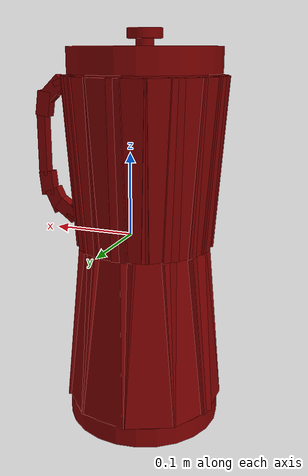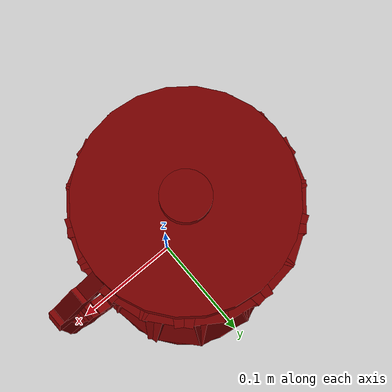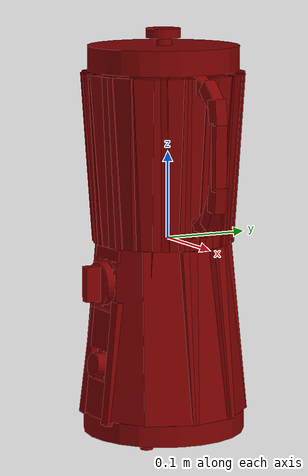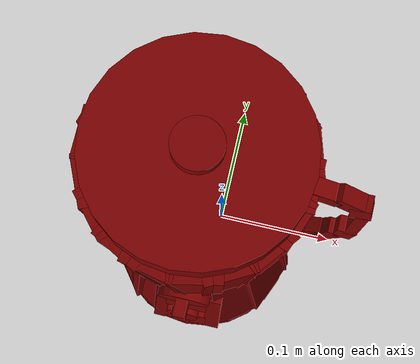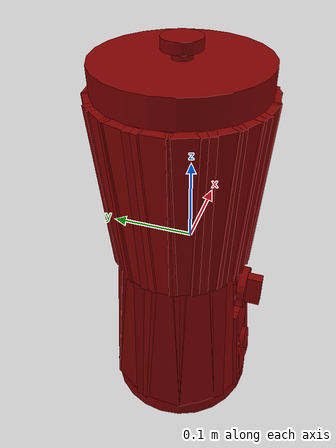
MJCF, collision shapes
<?xml version='1.0' encoding='UTF-8'?>
<mujoco model="model">
  <option timestep="0.002" gravity="0.0 0.0 -9.81"/>
  <compiler angle="radian"/>
  <asset>
    <mesh file="visuals/Blade001.obj" name="Blade001_vis"/>
    <mesh file="visuals/Body001.obj" name="Body001_vis"/>
    <mesh file="visuals/Button001.obj" name="Button001_vis"/>
    <mesh file="visuals/Jug001.obj" name="Jug001_vis"/>
    <mesh file="visuals/Jug001_Clear.obj" name="Jug001_Clear_vis"/>
    <mesh file="visuals/Knob001.obj" name="Knob001_vis"/>
    <mesh file="visuals/Lid001.obj" name="Lid001_vis"/>
    <texture file="visuals/T_BC001.png" name="Body001_material" type="2d"/>
    <material name="Body001_material" rgba="1 1 1 1.0" texture="Body001_material" shininess="0.2472135901451111" specular="1"/>
    <texture file="visuals/T_BC001.png" name="Button001_material" type="2d"/>
    <material name="Button001_material" rgba="1 1 1 1.0" texture="Button001_material" shininess="0.4472135901451111" specular="0.3103448502657381"/>
    <material name="Jug001_Clear_material" rgba="0.03639296442270279 0.03639296442270279 0.03639296442270279 0.75" shininess="0.4472135901451111" specular="0.3103448502657381"/>
    <texture file="visuals/T_BC001.png" name="Blade001_material" type="2d"/>
    <material name="Blade001_material" rgba="1 1 1 1.0" texture="Blade001_material" shininess="0.4472135901451111" specular="1"/>
    <texture file="visuals/T_BC001.png" name="Jug001_material" type="2d"/>
    <material name="Jug001_material" rgba="1 1 1 1.0" texture="Jug001_material" shininess="0.4472135901451111" specular="0.3103448502657381"/>
    <texture file="visuals/T_BC001.png" name="Lid001_material" type="2d"/>
    <material name="Lid001_material" rgba="1 1 1 1.0" texture="Lid001_material" shininess="0.4472135901451111" specular="0.3103448502657381"/>
    <texture file="visuals/T_BC001.png" name="Knob001_material" type="2d"/>
    <material name="Knob001_material" rgba="1 1 1 1.0" texture="Knob001_material" shininess="0.4472135901451111" specular="0.3103448502657381"/>
  </asset>
  <default>
    <default class="visual">
      <geom conaffinity="0" contype="0" group="1" type="mesh"/>
    </default>
    <default class="collision">
      <geom group="0" rgba="0.5 0 0 0.5"/>
    </default>
    <default class="spawn">
      <geom group="0" rgba="1 1 1 0.5" contype="0" conaffinity="0"/>
      <site group="0" rgba="1 1 1 0.5"/>
    </default>
    <default class="region">
      <geom group="1" conaffinity="0" contype="0" rgba="0 1 0 0"/>
    </default>
  </default>
  <worldbody>
    <body>
      <body name="object">
        <geom mesh="Body001_vis" type="mesh" solimp="0.998 0.998 0.001" solref="0.001 1" friction="0.95 0.3 0.1" class="visual" material="Body001_material"/>
        <geom class="collision" type="box" pos="-0.04508056 -0.07804891 -0.14529020" size="0.006290201563388109 0.004342055879533291 0.06407251954078674" quat="0.998228132724762 -0.04964236915111542 0.032765187323093414 0.0016294337110593915"/>
        <geom class="collision" type="box" pos="0.05375285 -0.02451593 -0.10722586" size="0.031314998865127563 0.0043420568108558655 0.09979217499494553" quat="0.8261741399765015 -0.04108605533838272 -0.02790989726781845 0.5612212419509888"/>
        <geom class="collision" type="box" pos="0.03857027 0.05775440 -0.10722586" size="0.03131500259041786 0.004342056345194578 0.09979217499494553" quat="0.40196719765663147 -0.01999003440141678 -0.04546890780329704 0.9143059253692627"/>
        <geom class="collision" type="box" pos="-0.05170204 0.07637054 -0.10722586" size="0.03131500259041786 0.0043420568108558655 0.09979217499494553" quat="0.20901905000209808 -0.010394622571766376 0.04856926202774048 -0.9766494035720825"/>
        <geom class="collision" type="box" pos="-0.09815431 0.00790504 -0.10722586" size="0.03131500259041786 0.0043420568108558655 0.09979218244552612" quat="0.6908359527587891 -0.034355610609054565 0.03587077558040619 -0.7213034629821777"/>
        <geom class="collision" type="box" pos="-0.08430692 -0.04020268 -0.10722586" size="0.03131500259041786 0.004342056345194578 0.09979218244552612" quat="0.8842520713806152 -0.043974295258522034 0.023092910647392273 -0.46436113119125366"/>
        <geom class="collision" type="box" pos="-0.06333639 -0.06090439 -0.10722586" size="0.017695583403110504 0.004342057276517153 0.09979221969842911" quat="0.9555090069770813 -0.0475178100168705 0.014459053985774517 -0.2907498776912689"/>
        <geom class="collision" type="box" pos="-0.08767474 0.04389017 -0.10722586" size="0.03131500259041786 0.0043420568108558655 0.09979217499494553" quat="0.4993739724159241 -0.024834129959344864 0.043014995753765106 -0.8649616241455078"/>
        <geom class="collision" type="box" pos="-0.00359403 0.08165376 -0.10722586" size="0.03131500259041786 0.0043420568108558655 0.09979217499494553" quat="0.1011553704738617 -0.005030522122979164 -0.04941396042704582 0.9936299920082092"/>
        <geom class="collision" type="box" pos="0.05773467 0.02011078 -0.10722586" size="0.031314998865127563 0.0043420568108558655 0.09979217499494553" quat="0.6324239373207092 -0.03145076334476471 -0.03844309598207474 0.7730284333229065"/>
        <geom class="collision" type="box" pos="0.02664947 -0.05934147 -0.10722586" size="0.022470667958259583 0.004342057276517153 0.09979216754436493" quat="0.9503158926963806 -0.047259774059057236 -0.015282219275832176 0.30729907751083374"/>
        <geom class="collision" type="cylinder" pos="-0.06773908 -0.04274936 -0.23530789" size="0.007523544132709503 0.004609951749444008" quat="1.0 0.0 0.0 0.0"/>
        <geom class="collision" type="cylinder" pos="-0.01946600 0.00450799 -0.21846642" size="0.09451781958341599 0.012371077202260494" quat="1.0 0.0 0.0 0.0"/>
        <geom class="collision" type="cylinder" pos="0.02882603 -0.04274936 -0.23530789" size="0.007523566018790007 0.004609973169863224" quat="1.0 0.0 0.0 0.0"/>
        <geom class="collision" type="cylinder" pos="-0.06773908 0.05196100 -0.23530789" size="0.007523576728999615 0.004609983880072832" quat="1.0 0.0 0.0 0.0"/>
        <geom class="collision" type="cylinder" pos="0.02882603 0.05196100 -0.23530789" size="0.007523587439209223 0.00460999459028244" quat="1.0 0.0 0.0 0.0"/>
        <geom class="collision" type="cylinder" pos="-0.01946600 0.00450799 -0.03621591" size="0.0683380588889122 0.0018439501291140914" quat="1.0 0.0 0.0 0.0"/>
        <geom class="collision" type="box" pos="0.00940554 -0.07701370 -0.13997952" size="0.007842416875064373 0.004342055879533291 0.07178051769733429" quat="0.9987657070159912 -0.04966913163661957 1.1028762711222566e-17 -3.0471712783511055e-24"/>
        <geom class="collision" type="box" pos="-0.01838777 -0.07404845 -0.10516823" size="0.020939840003848076 0.004342056345194578 0.02302616462111473" quat="0.9987657070159912 -0.04966913163661957 1.1028762711222566e-17 -3.0471712783511055e-24"/>
        <geom class="collision" type="box" pos="-0.01838777 -0.08197502 -0.18445455" size="0.020939840003848076 0.004321036394685507 0.021655265241861343" quat="0.9987657070159912 -0.04966913163661957 1.1028762711222566e-17 -3.0471712783511055e-24"/>
        <geom class="collision" type="box" pos="-0.01838777 -0.06517216 -0.01614511" size="0.02766570821404457 0.004342055879533291 0.007168604526668787" quat="0.9987657070159912 -0.04966913163661957 1.1028762711222566e-17 -3.0471712783511055e-24"/>
        <geom class="collision" type="cylinder" pos="-0.01946600 0.00436904 -0.11241136" size="0.0711572915315628 0.07241784036159515" quat="1.0 0.0 0.0 0.0"/>
        <body name="Button001">
          <joint axis="0.0 1.0 0.0" pos="-0.01946600 -0.08153000 -0.14642300" limited="true" name="Button001_joint" range="0.0 0.0025" type="slide" damping="1" frictionloss="1" armature=".01" stiffness="0.05"/>
          <geom mesh="Button001_vis" type="mesh" solimp="0.998 0.998 0.001" solref="0.001 1" friction="0.95 0.3 0.1" class="visual" material="Button001_material"/>
          <geom class="collision" type="cylinder" pos="-0.01946600 -0.08152478 -0.14642375" size="0.014364420436322689 0.006613458041101694" quat="0.7555490732192993 0.6550920605659485 1.1152972152003528e-17 -1.115296967046169e-17"/>
        </body>
        <body name="Jug001_Clear">
          <geom class="region" name="reg_int" type="box" pos="-0.01947919 0.004369000000000001 0.09852810000000001" size="0.049349090000000005 0.04934909 0.0732157"/>
          <joint axis="0.0 0.0 1.0" pos="0.00000000 0.00450800 0.08019402" limited="true" name="Jug001_Clear_joint" range="0.0 0.1" type="slide" damping="1" frictionloss="1" armature=".01" stiffness="0.05"/>
          <geom mesh="Jug001_Clear_vis" type="mesh" solimp="0.998 0.998 0.001" solref="0.001 1" friction="0.95 0.3 0.1" class="visual" material="Jug001_Clear_material"/>
          <geom class="collision" type="box" pos="0.06165763 0.00451493 0.09213771" size="0.004797820001840591 0.021256864070892334 0.09871997684240341" quat="0.9994385838508606 -1.3750918154183524e-15 0.03350444138050079 4.501618189323153e-09"/>
          <geom class="collision" type="box" pos="0.04225437 0.05740355 0.09213771" size="0.004797819536179304 0.02125686965882778 0.09871996939182281" quat="0.9382874965667725 -0.0115397023037076 0.031454458832740784 0.3442296087741852"/>
          <geom class="collision" type="box" pos="-0.00827662 0.08543458 0.09213771" size="0.004797815345227718 0.021256867796182632 0.09871996939182281" quat="0.7561712265014648 -0.021907974034547806 0.0253493282943964 0.6535155177116394"/>
          <geom class="collision" type="box" pos="-0.06449462 0.07321498 0.09213771" size="0.004797819536179304 0.021256865933537483 0.09871996194124222" quat="0.47799187898635864 -0.02942420355975628 0.016023846343159676 0.8777250051498413"/>
          <geom class="collision" type="box" pos="-0.09809421 0.02919597 0.09213770" size="0.004797817207872868 0.021256865933537483 0.09871996194124222" quat="0.15259899199008942 -0.033111363649368286 0.005115586332976818 0.9877201318740845"/>
          <geom class="collision" type="box" pos="-0.09525025 -0.02780454 0.09213771" size="0.004797815345227718 0.021256865933537483 0.09871996939182281" quat="0.20162884891033173 0.032815542072057724 0.006759255193173885 -0.9788888096809387"/>
          <geom class="collision" type="box" pos="-0.05970805 -0.06705004 0.09213771" size="0.004797820001840591 0.021256867796182632 0.09871996194124222" quat="0.5076490640640259 0.028860589489340782 0.01701805181801319 -0.8609122633934021"/>
          <geom class="collision" type="box" pos="-0.00349718 -0.07555939 0.09213771" size="0.004797819536179304 0.021256867796182632 0.09871997684240341" quat="0.7752306461334229 0.021146109327673912 0.02598826214671135 -0.6307891011238098"/>
          <geom class="collision" type="box" pos="0.04447075 -0.04564265 0.09213771" size="0.004797819536179304 0.021256867796182632 0.0987199917435646" quat="0.9454727172851562 0.010860658250749111 0.03169533982872963 -0.32397347688674927"/>
          <geom class="collision" type="box" pos="0.05809576 0.02838769 0.09213771" size="0.004797820001840591 0.021256865933537483 0.09871996194124222" quat="0.9884965419769287 -0.004944205284118652 0.03313766047358513 0.14748571813106537"/>
          <geom class="collision" type="box" pos="0.05629871 -0.02460230 0.09213771" size="0.004797819536179304 0.021256867796182632 0.09871997684240341" quat="0.9829298257827759 0.006064509507268667 0.03295101597905159 -0.18090449273586273"/>
          <geom class="collision" type="box" pos="0.01915279 -0.06721817 0.09213771" size="0.004797819536179304 0.02125686965882778 0.09871996194124222" quat="0.8598279356956482 0.017079556360840797 0.028824234381318092 -0.5094834566116333"/>
          <geom class="collision" type="box" pos="-0.03709385 -0.07548775 0.09213771" size="0.004797819536179304 0.021256867796182632 0.09871996939182281" quat="0.6291347146034241 0.02603328973054886 0.02109065093100071 -0.7765738368034363"/>
          <geom class="collision" type="box" pos="-0.08254409 -0.04832650 0.09213771" size="0.004797820001840591 0.021256867796182632 0.09871996939182281" quat="0.34387457370758057 0.031458817422389984 0.011527794413268566 -0.9384176731109619"/>
          <geom class="collision" type="box" pos="-0.10190295 0.00536135 0.09213771" size="0.0047978186048567295 0.021256865933537483 0.09871996939182281" quat="0.0051720221526920795 -0.03350399434566498 0.00017338321777060628 0.9994251728057861"/>
          <geom class="collision" type="box" pos="-0.08261613 0.05727113 0.09213771" size="0.004797820001840591 0.021256865933537483 0.09871997684240341" quat="0.3432343602180481 -0.03146668151021004 0.011506336741149426 0.9386520385742188"/>
          <geom class="collision" type="box" pos="-0.03241356 0.08536888 0.09213771" size="0.004797820001840591 0.021256865933537483 0.09871996194124222" quat="0.6514542698860168 -0.025408880785107613 0.021838875487446785 0.7579477429389954"/>
          <geom class="collision" type="box" pos="0.02409909 0.07330893 0.09213771" size="0.004797819536179304 0.02125686965882778 0.09871996939182281" quat="0.8772175908088684 -0.016055047512054443 0.02940719574689865 0.4789225459098816"/>
          <geom class="collision" type="box" pos="0.03652608 -0.01725264 -0.00408595" size="0.014097915031015873 0.013783157803118229 0.0020905467681586742" quat="0.983661949634552 1.4869330766664746e-10 -2.7213188300012625e-11 -0.18002544343471527"/>
          <geom class="collision" type="box" pos="0.01296338 -0.04647587 -0.00408595" size="0.014097914099693298 0.013783156871795654 0.0020905453711748123" quat="0.8787503838539124 1.3283457667156995e-10 -7.214734365490472e-11 -0.4772816002368927"/>
          <geom class="collision" type="box" pos="-0.02703209 -0.05576663 -0.00408595" size="0.014097915031015873 0.013783157803118229 0.002090544207021594" quat="0.6637383699417114 1.0033272823672945e-10 -1.1306464098304048e-10 -0.7479647994041443"/>
          <geom class="collision" type="box" pos="-0.06448396 -0.03645187 -0.00408595" size="0.014097915031015873 0.013783157803118229 0.0020905467681586742" quat="0.3605376183986664 5.449997050877009e-11 -1.4099650613719206e-10 -0.9327446818351746"/>
          <geom class="collision" type="box" pos="-0.07998958 -0.00042312 -0.00408595" size="0.014097915962338448 0.013783158734440804 0.0020905453711748123" quat="0.0375555194914341 5.6770903082703494e-12 -1.510581937314015e-10 -0.9992945194244385"/>
          <geom class="collision" type="box" pos="-0.06987263 0.03778844 -0.00408595" size="0.014097915031015873 0.013783157803118229 0.0020905467681586742" quat="0.29206669330596924 4.414969084765019e-11 1.445720348991486e-10 0.9563979506492615"/>
          <geom class="collision" type="box" pos="-0.03933844 0.06116776 -0.00408595" size="0.014097915962338448 0.013783158734440804 0.0020905453711748123" quat="0.5818083882331848 8.794792671906748e-11 1.229448071127237e-10 0.8133258819580078"/>
          <geom class="collision" type="box" pos="-0.00013555 0.06108140 -0.00408595" size="0.014097915962338448 0.013783158734440804 0.0020905467681586742" quat="0.8146055936813354 1.2313829123034026e-10 8.767690740096867e-11 0.5800153017044067"/>
          <geom class="collision" type="box" pos="0.03082697 0.03675691 -0.00408595" size="0.014097915031015873 0.013783157803118229 0.002090544207021594" quat="0.959339439868927 1.450167208538744e-10 4.266653350071259e-11 0.2822549343109131"/>
          <geom class="collision" type="box" pos="0.04022907 0.00907495 -0.00408595" size="0.014097917824983597 0.013783160597085953 0.0020905467681586742" quat="0.9991481900215149 1.5103426842522083e-10 6.238013577908319e-12 0.0412667915225029"/>
          <geom class="collision" type="box" pos="0.03457299 0.03003524 -0.00408595" size="0.014097915031015873 0.013783157803118229 0.00209054839797318" quat="0.9753949642181396 1.47443668385705e-10 3.3326119641685636e-11 0.22046473622322083"/>
          <geom class="collision" type="box" pos="0.01597625 0.05259297 -0.00408595" size="0.014097917824983597 0.013783160597085953 0.0020905453711748123" quat="0.8928526639938354 1.349663159011527e-10 6.807611419024084e-11 0.4503489136695862"/>
          <geom class="collision" type="box" pos="-0.02159430 0.06437484 -0.00408595" size="0.01418222114443779 0.01448780857026577 0.002090529538691044" quat="1.0 0.0 0.0 0.0"/>
          <geom class="collision" type="box" pos="-0.05828671 0.05057117 -0.00408595" size="0.014097915031015873 0.013783157803118229 0.0020905467681586742" quat="0.42588338255882263 6.437782251733637e-11 1.3676898502623658e-10 0.9047780632972717"/>
          <geom class="collision" type="box" pos="-0.07856151 0.01789301 -0.00408595" size="0.014097915031015873 0.013783157803118229 0.0020905467681586742" quat="0.1151188462972641 1.74017154852546e-11 1.5015806653639885e-10 0.9933516979217529"/>
          <geom class="collision" type="box" pos="-0.07448936 -0.02142483 -0.00408595" size="0.014097915962338448 0.013783158734440804 0.0020905467681586742" quat="0.21684034168720245 3.2778245395714833e-11 -1.4756643129665292e-10 -0.9762070775032043"/>
          <geom class="collision" type="box" pos="-0.04722853 -0.04962666 -0.00408595" size="0.014097915031015873 0.013783157803118229 0.0020905453711748123" quat="0.5225650072097778 7.899250004106406e-11 -1.2888151657008962e-10 -0.8525994420051575"/>
          <geom class="collision" type="box" pos="-0.00536357 -0.05442521 -0.00408595" size="0.014097917824983597 0.013783160597085953 0.002090544207021594" quat="0.7875469326972961 1.1904797980744064e-10 -9.31549282157107e-11 -0.6162546873092651"/>
          <geom class="collision" type="box" pos="0.02874897 -0.03157153 -0.00408595" size="0.014097915031015873 0.013783157803118229 0.0020905467681586742" quat="0.9503161907196045 1.436526592124565e-10 -4.7054967561299677e-11 -0.31128624081611633"/>
          <geom class="collision" type="box" pos="0.04043443 0.00410266 -0.00507593" size="0.014097651466727257 0.013782894238829613 0.002090513939037919" quat="1.0 0.0 0.0 0.0"/>
          <geom class="collision" type="box" pos="0.11265081 0.00453653 0.10631804" size="0.005383961834013462 0.007043835241347551 0.038118090480566025" quat="1.0 0.0 0.0 0.0"/>
          <geom class="collision" type="box" pos="0.10898329 0.00453653 0.15569367" size="0.008588218130171299 0.007043835241347551 0.014595777727663517" quat="0.9973220229148865 -8.794946379248741e-16 -0.07313574850559235 -9.826434776982751e-09"/>
          <geom class="collision" type="box" pos="0.09490363 0.00453653 0.17371806" size="0.008588218130171299 0.007043835241347551 0.014595777727663517" quat="0.9171411991119385 -8.441334687725541e-15 -0.398562490940094 -5.355040144650047e-08"/>
          <geom class="collision" type="box" pos="0.07812853 0.00453653 0.17960113" size="0.008588218130171299 0.007043835241347551 0.014595777727663517" quat="0.5457764863967896 -6.594723411020714e-14 0.8379307985305786 1.1258333643127116e-07"/>
          <geom class="collision" type="box" pos="0.08133287 0.00453653 0.02587470" size="0.008588218130171299 0.007043835241347551 0.014595777727663517" quat="0.4469589293003082 -2.5602803432889232e-08 -0.8945544958114624 1.0351514134754325e-07"/>
          <geom class="collision" type="box" pos="0.09657864 0.00453653 0.03780231" size="0.008588218130171299 0.007043835241347551 0.014595777727663517" quat="0.9753509759902954 1.9959710328976144e-08 0.2206592708826065 -7.557731862561923e-08"/>
          <geom class="collision" type="box" pos="0.10848565 0.00453653 0.05852125" size="0.008588218130171299 0.007043835241347551 0.014595777727663517" quat="0.9985536336898804 3.8145053782301375e-10 0.05376478657126427 -1.2425408257854542e-08"/>
          <geom class="collision" type="box" pos="0.06625793 0.00453653 0.02041277" size="0.008588218130171299 0.007043835241347551 0.014595777727663517" quat="0.503902018070221 -1.1074689609813504e-08 -0.8637608289718628 1.0884013335044074e-07"/>
          <geom class="collision" type="box" pos="0.02658990 -0.01346294 -0.01914299" size="0.009812936186790466 0.011892476119101048 0.01440267264842987" quat="0.983661949634552 1.4869330766664746e-10 -2.7213188300012625e-11 -0.18002544343471527"/>
          <geom class="collision" type="box" pos="0.00717126 -0.03752744 -0.01914299" size="0.00980029720813036 0.011892472393810749 0.01440267264842987" quat="0.8787503838539124 1.3283457667156995e-10 -7.214734365490472e-11 -0.4772816002368927"/>
          <geom class="collision" type="box" pos="-0.02581365 -0.04554411 -0.01914299" size="0.010167481377720833 0.011892477981746197 0.014402669854462147" quat="0.6637383699417114 1.0033272823672945e-10 -1.1306464098304048e-10 -0.7479647994041443"/>
          <geom class="collision" type="box" pos="-0.05712890 -0.02973733 -0.01914299" size="0.010493009351193905 0.011892473325133324 0.01440267264842987" quat="0.3605376183986664 5.449997050877009e-11 -1.4099650613719206e-10 -0.9327446818351746"/>
          <geom class="collision" type="box" pos="-0.06995400 0.00036008 -0.01914299" size="0.01036880910396576 0.011892478913068771 0.01440267264842987" quat="0.0375555194914341 5.6770903082703494e-12 -1.510581937314015e-10 -0.9992945194244385"/>
          <geom class="collision" type="box" pos="-0.06137344 0.03208955 -0.01914299" size="0.010184808634221554 0.011892474256455898 0.01440267264842987" quat="0.29206669330596924 4.414969084765019e-11 1.445720348991486e-10 0.9563979506492615"/>
          <geom class="collision" type="box" pos="-0.03590959 0.05114159 -0.01914299" size="0.00981199461966753 0.011892472393810749 0.01440267264842987" quat="0.5818083882331848 8.794792671906748e-11 1.229448071127237e-10 0.8133258819580078"/>
          <geom class="collision" type="box" pos="-0.00370223 0.05081420 -0.01914299" size="0.00954082328826189 0.011892472393810749 0.01440267264842987" quat="0.8146055936813354 1.2313829123034026e-10 8.767690740096867e-11 0.5800153017044067"/>
          <geom class="collision" type="box" pos="0.02139900 0.03071261 -0.01914299" size="0.009223192930221558 0.011892476119101048 0.01440267264842987" quat="0.959339439868927 1.450167208538744e-10 4.266653350071259e-11 0.2822549343109131"/>
          <geom class="collision" type="box" pos="0.02944653 0.00372189 -0.01914299" size="0.009248089045286179 0.011892478913068771 0.014402669854462147" quat="0.9991481900215149 1.5103426842522083e-10 6.238013577908319e-12 0.0412667915225029"/>
          <geom class="collision" type="box" pos="0.02646283 0.02177845 -0.01914299" size="0.008628114126622677 0.011892474256455898 0.014402675442397594" quat="0.9753949642181396 1.47443668385705e-10 3.3326119641685636e-11 0.22046473622322083"/>
          <geom class="collision" type="box" pos="0.00945335 0.04379833 -0.01914299" size="0.009464828297495842 0.011892473325133324 0.014402669854462147" quat="0.8928526639938354 1.349663159011527e-10 6.807611419024084e-11 0.4503489136695862"/>
          <geom class="collision" type="box" pos="-0.02135918 0.05341964 -0.01914299" size="0.0122368223965168 0.00978539977222681 0.014402681961655617" quat="1.0 0.0 0.0 0.0"/>
          <geom class="collision" type="box" pos="-0.05177306 0.04271853 -0.01914299" size="0.010209841653704643 0.011892473325133324 0.01440267264842987" quat="0.42588338255882263 6.437782251733637e-11 1.3676898502623658e-10 0.9047780632972717"/>
          <geom class="collision" type="box" pos="-0.06846853 0.01554890 -0.01914299" size="0.010064947418868542 0.011892477981746197 0.014402673579752445" quat="0.1151188462972641 1.74017154852546e-11 1.5015806653639885e-10 0.9933516979217529"/>
          <geom class="collision" type="box" pos="-0.06539303 -0.01714528 -0.01914299" size="0.010391995310783386 0.011892476119101048 0.01440267264842987" quat="0.21684034168720245 3.2778245395714833e-11 -1.4756643129665292e-10 -0.9762070775032043"/>
          <geom class="collision" type="box" pos="-0.04259763 -0.04050213 -0.01914299" size="0.010226324200630188 0.011892476119101048 0.014402669854462147" quat="0.5225650072097778 7.899250004106406e-11 -1.2888151657008962e-10 -0.8525994420051575"/>
          <geom class="collision" type="box" pos="-0.00793487 -0.04402787 -0.01914299" size="0.009752041660249233 0.011892474256455898 0.014402667991816998" quat="0.7875469326972961 1.1904797980744064e-10 -9.31549282157107e-11 -0.6162546873092651"/>
          <geom class="collision" type="box" pos="0.02011507 -0.02520959 -0.01914299" size="0.009728861972689629 0.011892473325133324 0.014402669854462147" quat="0.9503161907196045 1.436526592124565e-10 -4.7054967561299677e-11 -0.31128624081611633"/>
          <body name="Blade001">
            <joint axis="0.0 0.0 1.0" pos="-0.01946550 0.00422550 0.01874050" limited="false" name="Blade001_joint" range="0 360" type="hinge" damping="1" frictionloss="1" armature=".01" stiffness="0.05"/>
            <geom mesh="Blade001_vis" type="mesh" solimp="0.998 0.998 0.001" solref="0.001 1" friction="0.95 0.3 0.1" class="visual" material="Blade001_material"/>
            <geom class="collision" type="box" pos="-0.00143279 0.02232428 0.02188554" size="0.01079723984003067 0.005815119948238134 0.000714024412445724" quat="0.9160147905349731 0.0469263419508934 -0.11247249692678452 0.3821842074394226"/>
            <geom class="collision" type="box" pos="-0.01261811 0.01105387 0.01896857" size="0.005312731955200434 0.005815119948238134 0.0007140241796150804" quat="0.9225776791572571 0.01007954590022564 -0.024158546701073647 0.3849223256111145"/>
            <geom class="collision" type="box" pos="-0.03743484 -0.01396034 0.02174274" size="0.01079723984003067 0.005815119948238134 0.000714024412445724" quat="0.3842061460018158 -0.10841871798038483 -0.04944855719804764 -0.9155248999595642"/>
            <geom class="collision" type="box" pos="-0.02628030 -0.00263698 0.01891433" size="0.005312731955200434 0.005815119948238134 0.0007140241796150804" quat="0.38717636466026306 -0.02017034962773323 -0.012396342121064663 -0.9217016696929932"/>
            <geom class="collision" type="box" pos="-0.03744579 0.02238029 0.01561825" size="0.01079723984003067 0.005815119948238134 0.000714024412445724" quat="0.3805498480796814 -0.11204993724822998 0.046787749975919724 0.9167538285255432"/>
            <geom class="collision" type="box" pos="-0.01264914 -0.00263521 0.01855803" size="0.005312731955200434 0.005815119948238134 0.0007140241796150804" quat="0.9242292642593384 0.00551400613039732 0.02351902611553669 -0.38107314705848694"/>
            <geom class="collision" type="box" pos="-0.00140377 -0.01386479 0.01571539" size="0.01079723984003067 0.005815119948238134 0.000714024412445724" quat="0.917720377445221 0.0420127734541893 0.11199421435594559 -0.37878960371017456"/>
            <geom class="collision" type="box" pos="-0.02624793 0.01111868 0.01852104" size="0.005312731955200434 0.005815119948238134 0.0007140241796150804" quat="0.38328221440315247 -0.023667166009545326 0.010098296217620373 0.9232727885246277"/>
            <geom class="collision" type="box" pos="-0.01264914 -0.00263521 0.01855803" size="0.005312731955200434 0.005815119948238134 0.0007140241796150804" quat="0.9242292642593384 0.00551400613039732 0.02351902611553669 -0.38107314705848694"/>
            <geom class="collision" type="box" pos="-0.01942937 0.00421665 0.01875078" size="0.004505713935941458 0.004514103289693594 0.0007243526051752269" quat="0.9257199764251709 0.0 -0.0 -0.37820965051651"/>
          </body>
          <body name="Jug001">
            <geom mesh="Jug001_vis" type="mesh" solimp="0.998 0.998 0.001" solref="0.001 1" friction="0.95 0.3 0.1" class="visual" material="Jug001_material"/>
            <geom class="collision" type="cylinder" pos="-0.01946600 0.00450799 -0.00774487" size="0.04143597558140755 0.007566837128251791" quat="1.0 0.0 0.0 0.0"/>
            <geom class="collision" type="cylinder" pos="-0.01946600 0.00450799 0.00280278" size="0.01418313104659319 0.012319022789597511" quat="1.0 0.0 0.0 0.0"/>
            <geom class="collision" type="box" pos="0.06165763 0.00451493 0.09213771" size="0.004797820001840591 0.021256864070892334 0.09871997684240341" quat="0.9994385838508606 -1.3750918154183524e-15 0.03350444138050079 4.501618189323153e-09"/>
            <geom class="collision" type="box" pos="0.04225437 0.05740355 0.09213771" size="0.004797819536179304 0.02125686965882778 0.09871996939182281" quat="0.9382874965667725 -0.0115397023037076 0.031454458832740784 0.3442296087741852"/>
            <geom class="collision" type="box" pos="-0.00827662 0.08543458 0.09213771" size="0.004797815345227718 0.021256867796182632 0.09871996939182281" quat="0.7561712265014648 -0.021907974034547806 0.0253493282943964 0.6535155177116394"/>
            <geom class="collision" type="box" pos="-0.06449462 0.07321498 0.09213771" size="0.004797819536179304 0.021256865933537483 0.09871996194124222" quat="0.47799187898635864 -0.02942420355975628 0.016023846343159676 0.8777250051498413"/>
            <geom class="collision" type="box" pos="-0.09809421 0.02919597 0.09213770" size="0.004797817207872868 0.021256865933537483 0.09871996194124222" quat="0.15259899199008942 -0.033111363649368286 0.005115586332976818 0.9877201318740845"/>
            <geom class="collision" type="box" pos="-0.09525025 -0.02780454 0.09213771" size="0.004797815345227718 0.021256865933537483 0.09871996939182281" quat="0.20162884891033173 0.032815542072057724 0.006759255193173885 -0.9788888096809387"/>
            <geom class="collision" type="box" pos="-0.05970805 -0.06705004 0.09213771" size="0.004797820001840591 0.021256867796182632 0.09871996194124222" quat="0.5076490640640259 0.028860589489340782 0.01701805181801319 -0.8609122633934021"/>
            <geom class="collision" type="box" pos="-0.00349718 -0.07555939 0.09213771" size="0.004797819536179304 0.021256867796182632 0.09871997684240341" quat="0.7752306461334229 0.021146109327673912 0.02598826214671135 -0.6307891011238098"/>
            <geom class="collision" type="box" pos="0.04447075 -0.04564265 0.09213771" size="0.004797819536179304 0.021256867796182632 0.0987199917435646" quat="0.9454727172851562 0.010860658250749111 0.03169533982872963 -0.32397347688674927"/>
            <geom class="collision" type="box" pos="0.05809576 0.02838769 0.09213771" size="0.004797820001840591 0.021256865933537483 0.09871996194124222" quat="0.9884965419769287 -0.004944205284118652 0.03313766047358513 0.14748571813106537"/>
            <geom class="collision" type="box" pos="0.05629871 -0.02460230 0.09213771" size="0.004797819536179304 0.021256867796182632 0.09871997684240341" quat="0.9829298257827759 0.006064509507268667 0.03295101597905159 -0.18090449273586273"/>
            <geom class="collision" type="box" pos="0.01915279 -0.06721817 0.09213771" size="0.004797819536179304 0.02125686965882778 0.09871996194124222" quat="0.8598279356956482 0.017079556360840797 0.028824234381318092 -0.5094834566116333"/>
            <geom class="collision" type="box" pos="-0.03709385 -0.07548775 0.09213771" size="0.004797819536179304 0.021256867796182632 0.09871996939182281" quat="0.6291347146034241 0.02603328973054886 0.02109065093100071 -0.7765738368034363"/>
            <geom class="collision" type="box" pos="-0.08254409 -0.04832650 0.09213771" size="0.004797820001840591 0.021256867796182632 0.09871996939182281" quat="0.34387457370758057 0.031458817422389984 0.011527794413268566 -0.9384176731109619"/>
            <geom class="collision" type="box" pos="-0.10190295 0.00536135 0.09213771" size="0.0047978186048567295 0.021256865933537483 0.09871996939182281" quat="0.0051720221526920795 -0.03350399434566498 0.00017338321777060628 0.9994251728057861"/>
            <geom class="collision" type="box" pos="-0.08261613 0.05727113 0.09213771" size="0.004797820001840591 0.021256865933537483 0.09871997684240341" quat="0.3432343602180481 -0.03146668151021004 0.011506336741149426 0.9386520385742188"/>
            <geom class="collision" type="box" pos="-0.03241356 0.08536888 0.09213771" size="0.004797820001840591 0.021256865933537483 0.09871996194124222" quat="0.6514542698860168 -0.025408880785107613 0.021838875487446785 0.7579477429389954"/>
            <geom class="collision" type="box" pos="0.02409909 0.07330893 0.09213771" size="0.004797819536179304 0.02125686965882778 0.09871996939182281" quat="0.8772175908088684 -0.016055047512054443 0.02940719574689865 0.4789225459098816"/>
            <geom class="collision" type="box" pos="0.03652608 -0.01725264 -0.00408595" size="0.014097915031015873 0.013783157803118229 0.0020905467681586742" quat="0.983661949634552 1.4869330766664746e-10 -2.7213188300012625e-11 -0.18002544343471527"/>
            <geom class="collision" type="box" pos="0.01296338 -0.04647587 -0.00408595" size="0.014097914099693298 0.013783156871795654 0.0020905453711748123" quat="0.8787503838539124 1.3283457667156995e-10 -7.214734365490472e-11 -0.4772816002368927"/>
            <geom class="collision" type="box" pos="-0.02703209 -0.05576663 -0.00408595" size="0.014097915031015873 0.013783157803118229 0.002090544207021594" quat="0.6637383699417114 1.0033272823672945e-10 -1.1306464098304048e-10 -0.7479647994041443"/>
            <geom class="collision" type="box" pos="-0.06448396 -0.03645187 -0.00408595" size="0.014097915031015873 0.013783157803118229 0.0020905467681586742" quat="0.3605376183986664 5.449997050877009e-11 -1.4099650613719206e-10 -0.9327446818351746"/>
            <geom class="collision" type="box" pos="-0.07998958 -0.00042312 -0.00408595" size="0.014097915962338448 0.013783158734440804 0.0020905453711748123" quat="0.0375555194914341 5.6770903082703494e-12 -1.510581937314015e-10 -0.9992945194244385"/>
            <geom class="collision" type="box" pos="-0.06987263 0.03778844 -0.00408595" size="0.014097915031015873 0.013783157803118229 0.0020905467681586742" quat="0.29206669330596924 4.414969084765019e-11 1.445720348991486e-10 0.9563979506492615"/>
            <geom class="collision" type="box" pos="-0.03933844 0.06116776 -0.00408595" size="0.014097915962338448 0.013783158734440804 0.0020905453711748123" quat="0.5818083882331848 8.794792671906748e-11 1.229448071127237e-10 0.8133258819580078"/>
            <geom class="collision" type="box" pos="-0.00013555 0.06108140 -0.00408595" size="0.014097915962338448 0.013783158734440804 0.0020905467681586742" quat="0.8146055936813354 1.2313829123034026e-10 8.767690740096867e-11 0.5800153017044067"/>
            <geom class="collision" type="box" pos="0.03082697 0.03675691 -0.00408595" size="0.014097915031015873 0.013783157803118229 0.002090544207021594" quat="0.959339439868927 1.450167208538744e-10 4.266653350071259e-11 0.2822549343109131"/>
            <geom class="collision" type="box" pos="0.04022907 0.00907495 -0.00408595" size="0.014097917824983597 0.013783160597085953 0.0020905467681586742" quat="0.9991481900215149 1.5103426842522083e-10 6.238013577908319e-12 0.0412667915225029"/>
            <geom class="collision" type="box" pos="0.03457299 0.03003524 -0.00408595" size="0.014097915031015873 0.013783157803118229 0.00209054839797318" quat="0.9753949642181396 1.47443668385705e-10 3.3326119641685636e-11 0.22046473622322083"/>
            <geom class="collision" type="box" pos="0.01597625 0.05259297 -0.00408595" size="0.014097917824983597 0.013783160597085953 0.0020905453711748123" quat="0.8928526639938354 1.349663159011527e-10 6.807611419024084e-11 0.4503489136695862"/>
            <geom class="collision" type="box" pos="-0.02159430 0.06437484 -0.00408595" size="0.01418222114443779 0.01448780857026577 0.002090529538691044" quat="1.0 0.0 0.0 0.0"/>
            <geom class="collision" type="box" pos="-0.05828671 0.05057117 -0.00408595" size="0.014097915031015873 0.013783157803118229 0.0020905467681586742" quat="0.42588338255882263 6.437782251733637e-11 1.3676898502623658e-10 0.9047780632972717"/>
            <geom class="collision" type="box" pos="-0.07856151 0.01789301 -0.00408595" size="0.014097915031015873 0.013783157803118229 0.0020905467681586742" quat="0.1151188462972641 1.74017154852546e-11 1.5015806653639885e-10 0.9933516979217529"/>
            <geom class="collision" type="box" pos="-0.07448936 -0.02142483 -0.00408595" size="0.014097915962338448 0.013783158734440804 0.0020905467681586742" quat="0.21684034168720245 3.2778245395714833e-11 -1.4756643129665292e-10 -0.9762070775032043"/>
            <geom class="collision" type="box" pos="-0.04722853 -0.04962666 -0.00408595" size="0.014097915031015873 0.013783157803118229 0.0020905453711748123" quat="0.5225650072097778 7.899250004106406e-11 -1.2888151657008962e-10 -0.8525994420051575"/>
            <geom class="collision" type="box" pos="-0.00536357 -0.05442521 -0.00408595" size="0.014097917824983597 0.013783160597085953 0.002090544207021594" quat="0.7875469326972961 1.1904797980744064e-10 -9.31549282157107e-11 -0.6162546873092651"/>
            <geom class="collision" type="box" pos="0.02874897 -0.03157153 -0.00408595" size="0.014097915031015873 0.013783157803118229 0.0020905467681586742" quat="0.9503161907196045 1.436526592124565e-10 -4.7054967561299677e-11 -0.31128624081611633"/>
            <geom class="collision" type="box" pos="0.04043443 0.00410266 -0.00507593" size="0.014097651466727257 0.013782894238829613 0.002090513939037919" quat="1.0 0.0 0.0 0.0"/>
            <geom class="collision" type="box" pos="0.11265081 0.00453653 0.10631804" size="0.005383961834013462 0.007043835241347551 0.038118090480566025" quat="1.0 0.0 0.0 0.0"/>
            <geom class="collision" type="box" pos="0.10898329 0.00453653 0.15569367" size="0.008588218130171299 0.007043835241347551 0.014595777727663517" quat="0.9973220229148865 -8.794946379248741e-16 -0.07313574850559235 -9.826434776982751e-09"/>
            <geom class="collision" type="box" pos="0.09490363 0.00453653 0.17371806" size="0.008588218130171299 0.007043835241347551 0.014595777727663517" quat="0.9171411991119385 -8.441334687725541e-15 -0.398562490940094 -5.355040144650047e-08"/>
            <geom class="collision" type="box" pos="0.07812853 0.00453653 0.17960113" size="0.008588218130171299 0.007043835241347551 0.014595777727663517" quat="0.5457764863967896 -6.594723411020714e-14 0.8379307985305786 1.1258333643127116e-07"/>
            <geom class="collision" type="box" pos="0.08133287 0.00453653 0.02587470" size="0.008588218130171299 0.007043835241347551 0.014595777727663517" quat="0.4469589293003082 -2.5602803432889232e-08 -0.8945544958114624 1.0351514134754325e-07"/>
            <geom class="collision" type="box" pos="0.09657864 0.00453653 0.03780231" size="0.008588218130171299 0.007043835241347551 0.014595777727663517" quat="0.9753509759902954 1.9959710328976144e-08 0.2206592708826065 -7.557731862561923e-08"/>
            <geom class="collision" type="box" pos="0.10848565 0.00453653 0.05852125" size="0.008588218130171299 0.007043835241347551 0.014595777727663517" quat="0.9985536336898804 3.8145053782301375e-10 0.05376478657126427 -1.2425408257854542e-08"/>
            <geom class="collision" type="box" pos="0.06625793 0.00453653 0.02041277" size="0.008588218130171299 0.007043835241347551 0.014595777727663517" quat="0.503902018070221 -1.1074689609813504e-08 -0.8637608289718628 1.0884013335044074e-07"/>
            <geom class="collision" type="box" pos="0.02658990 -0.01346294 -0.01914299" size="0.009812936186790466 0.011892476119101048 0.01440267264842987" quat="0.983661949634552 1.4869330766664746e-10 -2.7213188300012625e-11 -0.18002544343471527"/>
            <geom class="collision" type="box" pos="0.00717126 -0.03752744 -0.01914299" size="0.00980029720813036 0.011892472393810749 0.01440267264842987" quat="0.8787503838539124 1.3283457667156995e-10 -7.214734365490472e-11 -0.4772816002368927"/>
            <geom class="collision" type="box" pos="-0.02581365 -0.04554411 -0.01914299" size="0.010167481377720833 0.011892477981746197 0.014402669854462147" quat="0.6637383699417114 1.0033272823672945e-10 -1.1306464098304048e-10 -0.7479647994041443"/>
            <geom class="collision" type="box" pos="-0.05712890 -0.02973733 -0.01914299" size="0.010493009351193905 0.011892473325133324 0.01440267264842987" quat="0.3605376183986664 5.449997050877009e-11 -1.4099650613719206e-10 -0.9327446818351746"/>
            <geom class="collision" type="box" pos="-0.06995400 0.00036008 -0.01914299" size="0.01036880910396576 0.011892478913068771 0.01440267264842987" quat="0.0375555194914341 5.6770903082703494e-12 -1.510581937314015e-10 -0.9992945194244385"/>
            <geom class="collision" type="box" pos="-0.06137344 0.03208955 -0.01914299" size="0.010184808634221554 0.011892474256455898 0.01440267264842987" quat="0.29206669330596924 4.414969084765019e-11 1.445720348991486e-10 0.9563979506492615"/>
            <geom class="collision" type="box" pos="-0.03590959 0.05114159 -0.01914299" size="0.00981199461966753 0.011892472393810749 0.01440267264842987" quat="0.5818083882331848 8.794792671906748e-11 1.229448071127237e-10 0.8133258819580078"/>
            <geom class="collision" type="box" pos="-0.00370223 0.05081420 -0.01914299" size="0.00954082328826189 0.011892472393810749 0.01440267264842987" quat="0.8146055936813354 1.2313829123034026e-10 8.767690740096867e-11 0.5800153017044067"/>
            <geom class="collision" type="box" pos="0.02139900 0.03071261 -0.01914299" size="0.009223192930221558 0.011892476119101048 0.01440267264842987" quat="0.959339439868927 1.450167208538744e-10 4.266653350071259e-11 0.2822549343109131"/>
            <geom class="collision" type="box" pos="0.02944653 0.00372189 -0.01914299" size="0.009248089045286179 0.011892478913068771 0.014402669854462147" quat="0.9991481900215149 1.5103426842522083e-10 6.238013577908319e-12 0.0412667915225029"/>
            <geom class="collision" type="box" pos="0.02646283 0.02177845 -0.01914299" size="0.008628114126622677 0.011892474256455898 0.014402675442397594" quat="0.9753949642181396 1.47443668385705e-10 3.3326119641685636e-11 0.22046473622322083"/>
            <geom class="collision" type="box" pos="0.00945335 0.04379833 -0.01914299" size="0.009464828297495842 0.011892473325133324 0.014402669854462147" quat="0.8928526639938354 1.349663159011527e-10 6.807611419024084e-11 0.4503489136695862"/>
            <geom class="collision" type="box" pos="-0.02135918 0.05341964 -0.01914299" size="0.0122368223965168 0.00978539977222681 0.014402681961655617" quat="1.0 0.0 0.0 0.0"/>
            <geom class="collision" type="box" pos="-0.05177306 0.04271853 -0.01914299" size="0.010209841653704643 0.011892473325133324 0.01440267264842987" quat="0.42588338255882263 6.437782251733637e-11 1.3676898502623658e-10 0.9047780632972717"/>
            <geom class="collision" type="box" pos="-0.06846853 0.01554890 -0.01914299" size="0.010064947418868542 0.011892477981746197 0.014402673579752445" quat="0.1151188462972641 1.74017154852546e-11 1.5015806653639885e-10 0.9933516979217529"/>
            <geom class="collision" type="box" pos="-0.06539303 -0.01714528 -0.01914299" size="0.010391995310783386 0.011892476119101048 0.01440267264842987" quat="0.21684034168720245 3.2778245395714833e-11 -1.4756643129665292e-10 -0.9762070775032043"/>
            <geom class="collision" type="box" pos="-0.04259763 -0.04050213 -0.01914299" size="0.010226324200630188 0.011892476119101048 0.014402669854462147" quat="0.5225650072097778 7.899250004106406e-11 -1.2888151657008962e-10 -0.8525994420051575"/>
            <geom class="collision" type="box" pos="-0.00793487 -0.04402787 -0.01914299" size="0.009752041660249233 0.011892474256455898 0.014402667991816998" quat="0.7875469326972961 1.1904797980744064e-10 -9.31549282157107e-11 -0.6162546873092651"/>
            <geom class="collision" type="box" pos="0.02011507 -0.02520959 -0.01914299" size="0.009728861972689629 0.011892473325133324 0.014402669854462147" quat="0.9503161907196045 1.436526592124565e-10 -4.7054967561299677e-11 -0.31128624081611633"/>
          </body>
          <body name="Lid001">
            <joint axis="0.0 0.0 1.0" pos="-0.01946600 0.00436900 0.20612315" limited="true" name="Lid001_joint" range="0.0 0.05" type="slide" damping="1" frictionloss="1" armature=".01" stiffness="0.05"/>
            <geom mesh="Lid001_vis" type="mesh" solimp="0.998 0.998 0.001" solref="0.001 1" friction="0.95 0.3 0.1" class="visual" material="Lid001_material"/>
            <geom class="collision" type="cylinder" pos="-0.01990009 0.00436904 0.18307608" size="0.07152660936117172 0.010581719689071178" quat="1.0 0.0 0.0 0.0"/>
            <geom class="collision" type="cylinder" pos="-0.01946600 0.00436904 0.20682619" size="0.08795700967311859 0.014345938339829445" quat="1.0 0.0 0.0 0.0"/>
            <geom class="collision" type="cylinder" pos="-0.01946600 0.00436904 0.22532811" size="0.010166909545660019 0.006375753786414862" quat="1.0 0.0 0.0 0.0"/>
            <geom class="collision" type="cylinder" pos="-0.01946600 0.00436904 0.23515702" size="0.020150093361735344 0.005524957552552223" quat="1.0 0.0 0.0 0.0"/>
          </body>
        </body>
        <body name="Knob001">
          <joint axis="0.0 1.0 0.0" pos="-0.01917012 -0.08248343 -0.04983365" limited="true" name="Knob001_joint" range="0.0 4.101523742186674" type="hinge" damping="0.05" armature="0.001"/>
          <geom mesh="Knob001_vis" type="mesh" solimp="0.998 0.998 0.001" solref="0.001 1" friction="0.95 0.3 0.1" class="visual" material="Knob001_material"/>
          <geom class="collision" type="box" pos="-0.01919014 -0.08794377 -0.04989285" size="0.005749834235757589 0.010156050324440002 0.02045282907783985" quat="1.0 0.0 0.0 0.0"/>
          <geom class="collision" type="cylinder" pos="-0.01931115 -0.07559556 -0.04996960" size="0.02542409487068653 0.004805106204003096" quat="0.7071067094802856 0.7071068286895752 0.0 0.0"/>
        </body>
        <geom class="region" name="reg_main" type="box" pos="-0.0218145 0.004457990000000002 1.5000000000431335e-07" size="0.09641549 0.09411699000000001 0.24091814"/>
      </body>
    </body>
  </worldbody>
  <actuator>
    <motor name="Button001_joint_actuator" joint="Button001_joint" gear="0.5"/>
    <motor name="Jug001_Clear_joint_actuator" joint="Jug001_Clear_joint" gear="125"/>
    <motor name="Knob001_joint_actuator" joint="Knob001_joint" gear="7"/>
    <motor name="Blade001_joint_actuator" joint="Blade001_joint" gear="20"/>
    <motor name="Lid001_joint_actuator" joint="Lid001_joint" gear="30"/>
  </actuator>
</mujoco>
